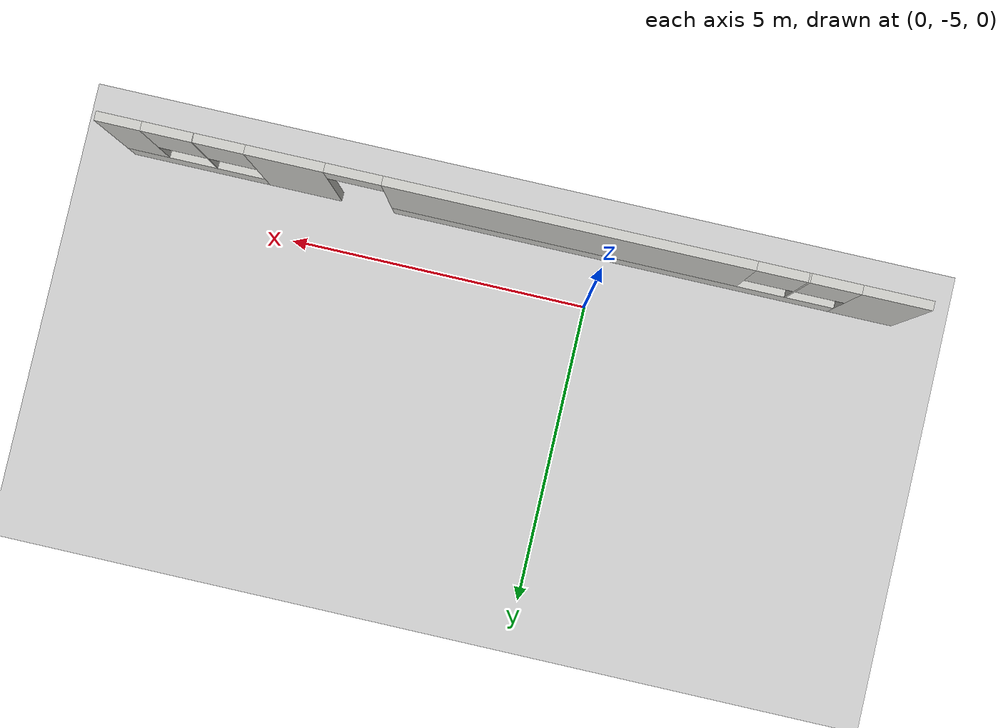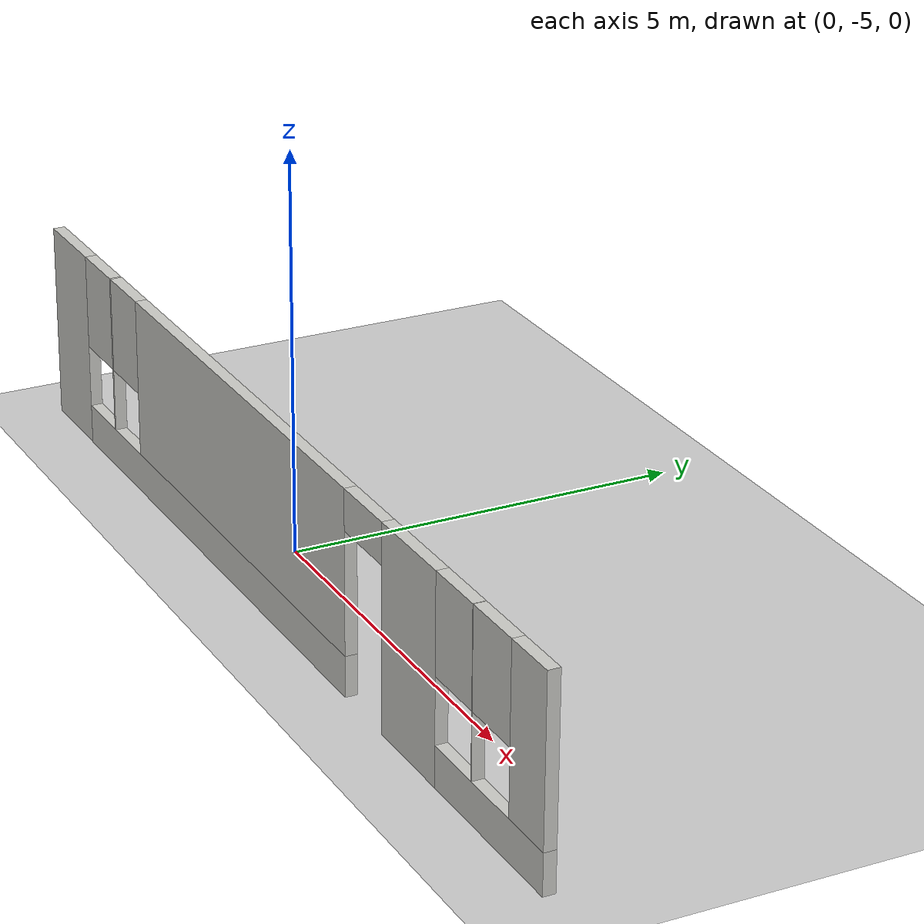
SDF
<sdf version="1.6">
 <world name="default">
  <model name="ground_plane">
   <static>1</static>
   <link name="link">
    <collision name="collision">
     <geometry><plane><normal>0 0 1</normal><size>100 100</size></plane></geometry>
     <surface><friction><ode><mu>100</mu><mu2>50</mu2></ode></friction></surface>
    </collision>
    <visual name="visual">
     <cast_shadows>0</cast_shadows>
     <geometry><plane><normal>0 0 1</normal><size>100 100</size></plane></geometry>
     <material>
      <script><uri>file://media/materials/scripts/gazebo.material</uri><name>Gazebo/Grey</name></script>
     </material>
    </visual>
   </link>
  </model>
  <model name="wall_window_door_tiles">
   <pose>1.42377 -5.91503 0 0 -0 0</pose>
   <link name="Wall_0">
    <visual name="Wall_0_Visual_0">
     <pose>-5.9525 0 1.25 0 -0 0</pose>
     <geometry><box><size>1.095 0.15 2.5</size></box></geometry>
     <material>
      <script><uri>file://media/materials/scripts/gazebo.material</uri><name>Gazebo/CeilingTiled</name></script>
      <ambient>1 1 1 1</ambient>
     </material>
     <meta><layer>0</layer></meta>
    </visual>
    <collision name="Wall_0_Collision_0">
     <geometry><box><size>1.095 0.15 2.5</size></box></geometry>
     <pose>-5.9525 0 1.25 0 -0 0</pose>
    </collision>
    <visual name="Wall_0_Visual_1">
     <pose>3.555 0 1.25 0 -0 0</pose>
     <geometry><box><size>1.24 0.15 2.5</size></box></geometry>
     <material>
      <script><uri>file://media/materials/scripts/gazebo.material</uri><name>Gazebo/CeilingTiled</name></script>
      <ambient>1 1 1 1</ambient>
     </material>
     <meta><layer>0</layer></meta>
    </visual>
    <collision name="Wall_0_Collision_1">
     <geometry><box><size>1.24 0.15 2.5</size></box></geometry>
     <pose>3.555 0 1.25 0 -0 0</pose>
    </collision>
    <visual name="Wall_0_Visual_2">
     <pose>-1.685 0 0.25 0 -0 0</pose>
     <geometry><box><size>7.44 0.15 0.5</size></box></geometry>
     <material>
      <script><uri>file://media/materials/scripts/gazebo.material</uri><name>Gazebo/CeilingTiled</name></script>
      <ambient>1 1 1 1</ambient>
     </material>
     <meta><layer>0</layer></meta>
    </visual>
    <collision name="Wall_0_Collision_2">
     <geometry><box><size>7.44 0.15 0.5</size></box></geometry>
     <pose>-1.685 0 0.25 0 -0 0</pose>
    </collision>
    <visual name="Wall_0_Visual_3">
     <pose>5.3375 0 0.25 0 -0 0</pose>
     <geometry><box><size>2.325 0.15 0.5</size></box></geometry>
     <material>
      <script><uri>file://media/materials/scripts/gazebo.material</uri><name>Gazebo/CeilingTiled</name></script>
      <ambient>1 1 1 1</ambient>
     </material>
     <meta><layer>0</layer></meta>
    </visual>
    <collision name="Wall_0_Collision_3">
     <geometry><box><size>2.325 0.15 0.5</size></box></geometry>
     <pose>5.3375 0 0.25 0 -0 0</pose>
    </collision>
    <visual name="Wall_0_Visual_4">
     <pose>-4.59 0 1.5 0 -0 0</pose>
     <geometry><box><size>0.03 0.15 2</size></box></geometry>
     <material>
      <script><uri>file://media/materials/scripts/gazebo.material</uri><name>Gazebo/CeilingTiled</name></script>
      <ambient>1 1 1 1</ambient>
     </material>
     <meta><layer>0</layer></meta>
    </visual>
    <collision name="Wall_0_Collision_4">
     <geometry><box><size>0.03 0.15 2</size></box></geometry>
     <pose>-4.59 0 1.5 0 -0 0</pose>
    </collision>
    <visual name="Wall_0_Visual_5">
     <pose>-0.87 0 1.5 0 -0 0</pose>
     <geometry><box><size>5.81 0.15 2</size></box></geometry>
     <material>
      <script><uri>file://media/materials/scripts/gazebo.material</uri><name>Gazebo/CeilingTiled</name></script>
      <ambient>1 1 1 1</ambient>
     </material>
     <meta><layer>0</layer></meta>
    </visual>
    <collision name="Wall_0_Collision_5">
     <geometry><box><size>5.81 0.15 2</size></box></geometry>
     <pose>-0.87 0 1.5 0 -0 0</pose>
    </collision>
    <visual name="Wall_0_Visual_6">
     <pose>-0.87 0 1.5 0 -0 0</pose>
     <geometry><box><size>5.81 0.15 2</size></box></geometry>
     <material>
      <script><uri>file://media/materials/scripts/gazebo.material</uri><name>Gazebo/CeilingTiled</name></script>
      <ambient>1 1 1 1</ambient>
     </material>
     <meta><layer>0</layer></meta>
    </visual>
    <collision name="Wall_0_Collision_6">
     <geometry><box><size>5.81 0.15 2</size></box></geometry>
     <pose>-0.87 0 1.5 0 -0 0</pose>
    </collision>
    <visual name="Wall_0_Visual_7">
     <pose>4.98 0 1.5 0 -0 0</pose>
     <geometry><box><size>0.01 0.15 2</size></box></geometry>
     <material>
      <script><uri>file://media/materials/scripts/gazebo.material</uri><name>Gazebo/CeilingTiled</name></script>
      <ambient>1 1 1 1</ambient>
     </material>
     <meta><layer>0</layer></meta>
    </visual>
    <collision name="Wall_0_Collision_7">
     <geometry><box><size>0.01 0.15 2</size></box></geometry>
     <pose>4.98 0 1.5 0 -0 0</pose>
    </collision>
    <visual name="Wall_0_Visual_8">
     <pose>6.1425 0 1.5 0 -0 0</pose>
     <geometry><box><size>0.715 0.15 2</size></box></geometry>
     <material>
      <script><uri>file://media/materials/scripts/gazebo.material</uri><name>Gazebo/CeilingTiled</name></script>
      <ambient>1 1 1 1</ambient>
     </material>
     <meta><layer>0</layer></meta>
    </visual>
    <collision name="Wall_0_Collision_8">
     <geometry><box><size>0.715 0.15 2</size></box></geometry>
     <pose>6.1425 0 1.5 0 -0 0</pose>
    </collision>
    <visual name="Wall_0_Visual_9">
     <pose>-5.005 0 1.9 0 -0 0</pose>
     <geometry><box><size>0.8 0.15 1.2</size></box></geometry>
     <material>
      <script><uri>file://media/materials/scripts/gazebo.material</uri><name>Gazebo/CeilingTiled</name></script>
      <ambient>1 1 1 1</ambient>
     </material>
     <meta><layer>0</layer></meta>
    </visual>
    <collision name="Wall_0_Collision_9">
     <geometry><box><size>0.8 0.15 1.2</size></box></geometry>
     <pose>-5.005 0 1.9 0 -0 0</pose>
    </collision>
    <visual name="Wall_0_Visual_10">
     <pose>4.575 0 1.9 0 -0 0</pose>
     <geometry><box><size>0.8 0.15 1.2</size></box></geometry>
     <material>
      <script><uri>file://media/materials/scripts/gazebo.material</uri><name>Gazebo/CeilingTiled</name></script>
      <ambient>1 1 1 1</ambient>
     </material>
     <meta><layer>0</layer></meta>
    </visual>
    <collision name="Wall_0_Collision_10">
     <geometry><box><size>0.8 0.15 1.2</size></box></geometry>
     <pose>4.575 0 1.9 0 -0 0</pose>
    </collision>
    <visual name="Wall_0_Visual_11">
     <pose>-4.175 0 1.9 0 -0 0</pose>
     <geometry><box><size>0.8 0.15 1.2</size></box></geometry>
     <material>
      <script><uri>file://media/materials/scripts/gazebo.material</uri><name>Gazebo/CeilingTiled</name></script>
      <ambient>1 1 1 1</ambient>
     </material>
     <meta><layer>0</layer></meta>
    </visual>
    <collision name="Wall_0_Collision_11">
     <geometry><box><size>0.8 0.15 1.2</size></box></geometry>
     <pose>-4.175 0 1.9 0 -0 0</pose>
    </collision>
    <visual name="Wall_0_Visual_12">
     <pose>5.385 0 1.9 0 -0 0</pose>
     <geometry><box><size>0.8 0.15 1.2</size></box></geometry>
     <material>
      <script><uri>file://media/materials/scripts/gazebo.material</uri><name>Gazebo/CeilingTiled</name></script>
      <ambient>1 1 1 1</ambient>
     </material>
     <meta><layer>0</layer></meta>
    </visual>
    <collision name="Wall_0_Collision_12">
     <geometry><box><size>0.8 0.15 1.2</size></box></geometry>
     <pose>5.385 0 1.9 0 -0 0</pose>
    </collision>
    <visual name="Wall_0_Visual_13">
     <pose>2.485 0 2.25 0 -0 0</pose>
     <geometry><box><size>0.9 0.15 0.5</size></box></geometry>
     <material>
      <script><uri>file://media/materials/scripts/gazebo.material</uri><name>Gazebo/CeilingTiled</name></script>
      <ambient>1 1 1 1</ambient>
     </material>
     <meta><layer>0</layer></meta>
    </visual>
    <collision name="Wall_0_Collision_13">
     <geometry><box><size>0.9 0.15 0.5</size></box></geometry>
     <pose>2.485 0 2.25 0 -0 0</pose>
    </collision>
    <visual name="Wall_0_Visual_14">
     <pose>2.485 0 2.25 0 -0 0</pose>
     <geometry><box><size>0.9 0.15 0.5</size></box></geometry>
     <material>
      <script><uri>file://media/materials/scripts/gazebo.material</uri><name>Gazebo/CeilingTiled</name></script>
      <ambient>1 1 1 1</ambient>
     </material>
     <meta><layer>0</layer></meta>
    </visual>
    <collision name="Wall_0_Collision_14">
     <geometry><box><size>0.9 0.15 0.5</size></box></geometry>
     <pose>2.485 0 2.25 0 -0 0</pose>
    </collision>
   </link>
   <static>1</static>
  </model>
 </world>
</sdf>
